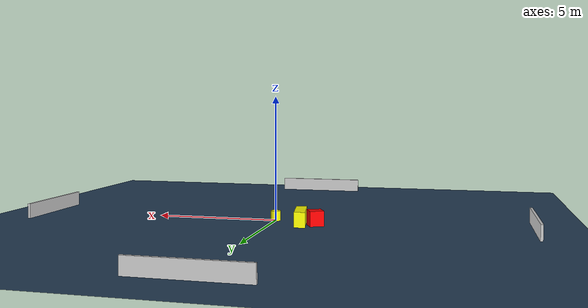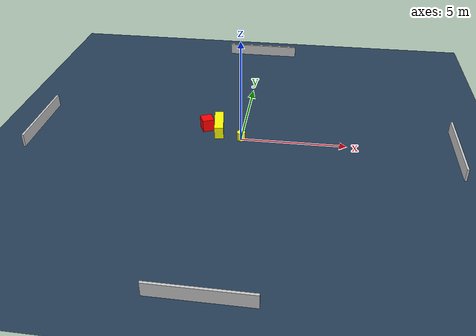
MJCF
<?xml version="1.0" ?>
<mujoco model="generated_environment">
  <option timestep="0.01" integrator="RK4" cone="elliptic"/>
  <default>
    <geom density="1"/>
  </default>
  <asset>
    <texture builtin="gradient" height="3072" name="skybox" rgb1="0.3 0.5 0.7" rgb2="0 0 0" type="skybox" width="512"/>
    <texture builtin="checker" height="300" name="groundplane" rgb1="0.2 0.3 0.4" rgb2="0.1 0.2 0.3" type="2d" width="300"/>
    <material name="groundplane" reflectance="0.2" texrepeat="5 5" texture="groundplane"/>
  </asset>
  <worldbody>
    <light dir="0 0 -1" directional="true" pos="0 0 1.5"/>
    <geom condim="3" friction="0.5 0.005 0.001" material="groundplane" name="floor" pos="0 0 0" size="0 0 0.05" type="plane"/>
    <body name="walls">
      <geom name="wall_1" condim="4" pos="-10.0 0.0 0.3" rgba="0.800000011920929 0.800000011920929 0.800000011920929 1.0" size="0.05 2.0 0.3" type="box"/>
      <geom name="wall_2" condim="4" pos="10.0 0.0 0.3" rgba="0.800000011920929 0.800000011920929 0.800000011920929 1.0" size="0.05 2.0 0.3" type="box"/>
      <geom name="wall_3" condim="4" pos="0.0 -10.0 0.3" rgba="0.800000011920929 0.800000011920929 0.800000011920929 1.0" size="2.0 0.05 0.3" type="box"/>
      <geom name="wall_4" condim="4" pos="0.0 10.0 0.3" rgba="0.800000011920929 0.800000011920929 0.800000011920929 1.0" size="2.0 0.05 0.3" type="box"/>
    </body>
    <body name="robot">
      <joint name="joint_x" type="slide" pos="0 0 0" axis="1 0 0"/>
      <joint name="joint_y" type="slide" pos="0 0 0" axis="0 1 0"/>
      <geom name="robot" type="cylinder" pos="0.0 0.0 0.2" size="0.2 0.2 0.0" mass="5.0" friction="1.0 0.005 0.0001" condim="4" rgba="1.0 1.0 0.0 1.0"/>
    </body>
    <body name="obstacle_1_movable">
      <geom name="obstacle_1_movable" condim="4" pos="-1.1773775539673128 0.6801133331369802 0.3" euler="0 0 278.74006586519573" friction="0.0 0.005 0.001" rgba="1.0 1.0 0.0 1.0" size="0.7874461232993986 0.21396607174205734 0.3" type="box" mass="0.1"/>
      <joint type="free"/>
    </body>
    <body name="obstacle_2_static">
      <geom name="obstacle_2_static" condim="4" pos="-1.7831357843319418 0.7808099468295101 0.3" euler="0 0 295.15454842603316" friction="0.0 0.005 0.001" rgba="1.0 0.0 0.0 1.0" size="0.29373798515995186 0.28125517717853976 0.3" type="box"/>
    </body>
  </worldbody>
  <actuator>
    <motor name="actuator_x" joint="joint_x" gear="1" ctrlrange="-1 1"/>
    <motor name="actuator_y" joint="joint_y" gear="1" ctrlrange="-1 1"/>
  </actuator>
</mujoco>
